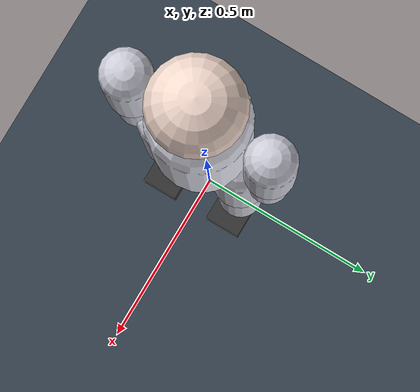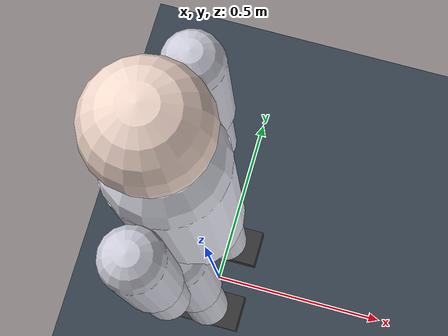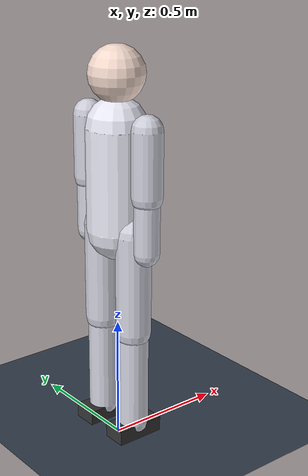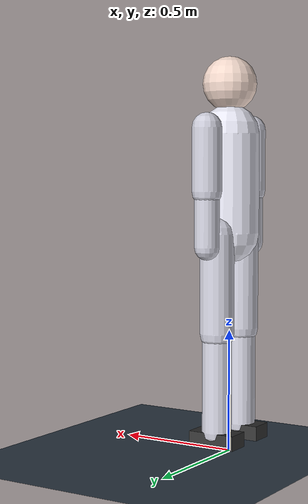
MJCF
<mujoco model="simple_humanoid">
  <compiler angle="radian" coordinate="local" inertiafromgeom="true"/>
  <option timestep="0.005" gravity="0 0 -9.81" integrator="RK4"/>

  <default>
    <joint limited="true" damping="1" armature="0.01"/>
    <geom friction="1 0.5 0.01" density="300" rgba="0.8 0.8 0.85 1"/>
    <motor ctrllimited="true" ctrlrange="-1 1"/>
  </default>

  <worldbody>
    <geom name="floor" type="plane" size="5 5 0.1" rgba="0.2 0.25 0.3 1"/>

    <body name="torso" pos="0 0 1.1">
      <freejoint/>
      <geom type="capsule" fromto="0 0 0.2 0 0 -0.2" size="0.12" rgba="0.9 0.9 0.95 1"/>

      <!-- head -->
      <body name="head" pos="0 0 0.35">
        <joint name="neck_pitch" type="hinge" axis="0 1 0" range="-0.6 0.6"/>
        <geom type="sphere" size="0.11" pos="0 0 0.05" rgba="0.95 0.85 0.8 1"/>
      </body>

      <!-- left arm -->
      <body name="l_shoulder" pos="0 0.18 0.22">
        <joint name="l_shoulder_pitch" type="hinge" axis="0 1 0" range="-1.2 1.2"/>
        <joint name="l_shoulder_roll" type="hinge" axis="1 0 0" range="-1.2 1.2"/>
        <geom type="capsule" fromto="0 0 0 0 0 -0.25" size="0.06"/>
        <body name="l_elbow" pos="0 0 -0.25">
          <joint name="l_elbow" type="hinge" axis="0 1 0" range="0 2.3"/>
          <geom type="capsule" fromto="0 0 0 0 0 -0.22" size="0.05"/>
        </body>
      </body>

      <!-- right arm -->
      <body name="r_shoulder" pos="0 -0.18 0.22">
        <joint name="r_shoulder_pitch" type="hinge" axis="0 1 0" range="-1.2 1.2"/>
        <joint name="r_shoulder_roll" type="hinge" axis="1 0 0" range="-1.2 1.2"/>
        <geom type="capsule" fromto="0 0 0 0 0 -0.25" size="0.06"/>
        <body name="r_elbow" pos="0 0 -0.25">
          <joint name="r_elbow" type="hinge" axis="0 1 0" range="0 2.3"/>
          <geom type="capsule" fromto="0 0 0 0 0 -0.22" size="0.05"/>
        </body>
      </body>

      <!-- left leg -->
      <body name="l_hip" pos="0 0.10 -0.20">
        <joint name="l_hip_pitch" type="hinge" axis="0 1 0" range="-1.2 1.2"/>
        <joint name="l_hip_roll" type="hinge" axis="1 0 0" range="-0.6 0.6"/>
        <geom type="capsule" fromto="0 0 0 0 0 -0.40" size="0.07"/>
        <body name="l_knee" pos="0 0 -0.40">
          <joint name="l_knee" type="hinge" axis="0 1 0" range="0 2.6"/>
          <geom type="capsule" fromto="0 0 0 0 0 -0.40" size="0.06"/>
          <body name="l_ankle" pos="0 0 -0.40">
            <joint name="l_ankle_pitch" type="hinge" axis="0 1 0" range="-0.8 0.8"/>
            <geom type="box" size="0.10 0.05 0.03" pos="0 0 -0.03" rgba="0.2 0.2 0.2 1"/>
          </body>
        </body>
      </body>

      <!-- right leg -->
      <body name="r_hip" pos="0 -0.10 -0.20">
        <joint name="r_hip_pitch" type="hinge" axis="0 1 0" range="-1.2 1.2"/>
        <joint name="r_hip_roll" type="hinge" axis="1 0 0" range="-0.6 0.6"/>
        <geom type="capsule" fromto="0 0 0 0 0 -0.40" size="0.07"/>
        <body name="r_knee" pos="0 0 -0.40">
          <joint name="r_knee" type="hinge" axis="0 1 0" range="0 2.6"/>
          <geom type="capsule" fromto="0 0 0 0 0 -0.40" size="0.06"/>
          <body name="r_ankle" pos="0 0 -0.40">
            <joint name="r_ankle_pitch" type="hinge" axis="0 1 0" range="-0.8 0.8"/>
            <geom type="box" size="0.10 0.05 0.03" pos="0 0 -0.03" rgba="0.2 0.2 0.2 1"/>
          </body>
        </body>
      </body>

    </body>
  </worldbody>

  <actuator>
    <!-- simple posture motors (unitless control) -->
    <motor joint="neck_pitch" gear="30"/>

    <motor joint="l_shoulder_pitch" gear="40"/>
    <motor joint="l_shoulder_roll" gear="40"/>
    <motor joint="l_elbow" gear="30"/>

    <motor joint="r_shoulder_pitch" gear="40"/>
    <motor joint="r_shoulder_roll" gear="40"/>
    <motor joint="r_elbow" gear="30"/>

    <motor joint="l_hip_pitch" gear="60"/>
    <motor joint="l_hip_roll" gear="60"/>
    <motor joint="l_knee" gear="60"/>
    <motor joint="l_ankle_pitch" gear="40"/>

    <motor joint="r_hip_pitch" gear="60"/>
    <motor joint="r_hip_roll" gear="60"/>
    <motor joint="r_knee" gear="60"/>
    <motor joint="r_ankle_pitch" gear="40"/>
  </actuator>
</mujoco>
